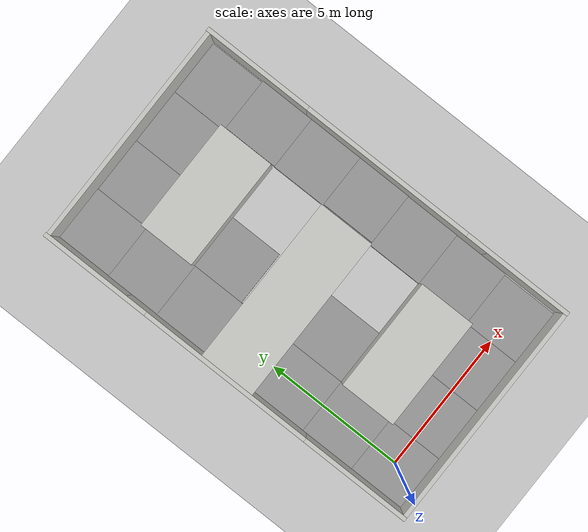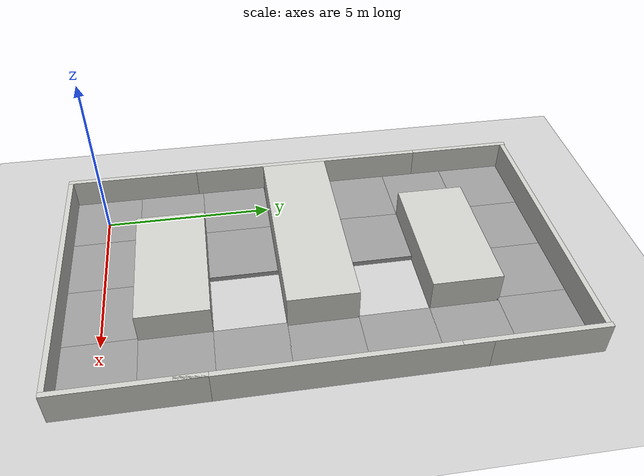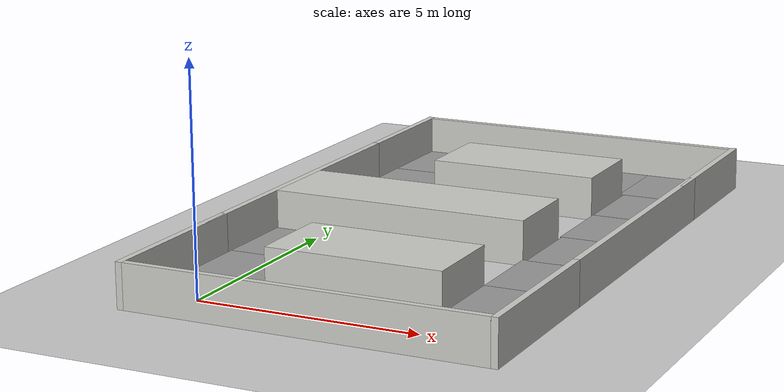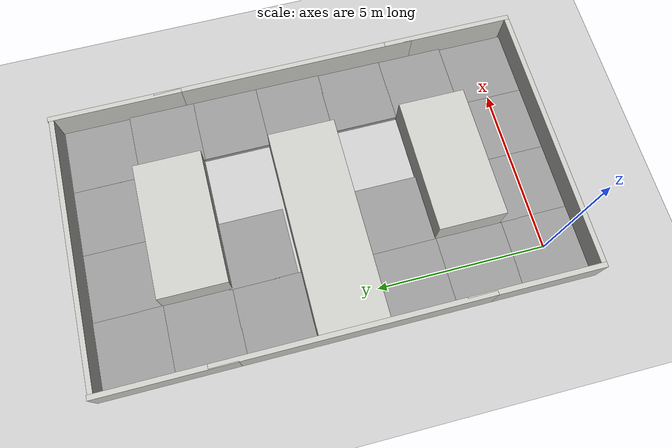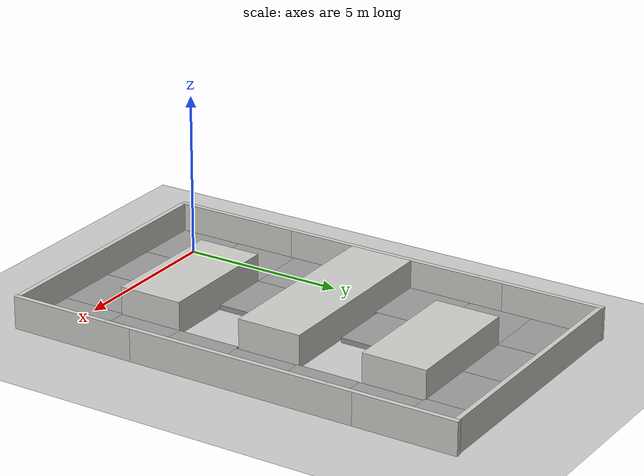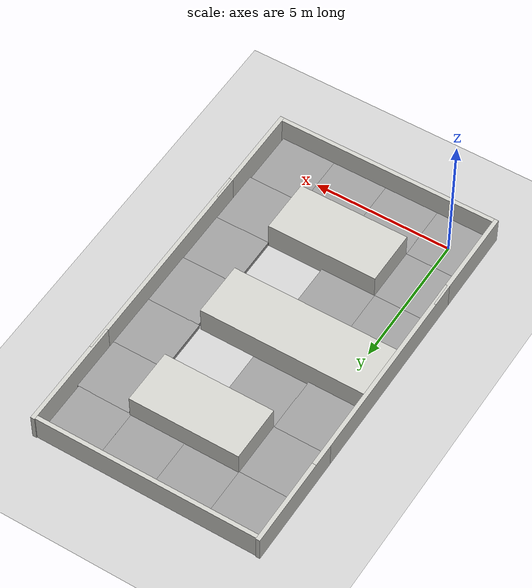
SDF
<sdf version="1.6">
 <world name="default">
  <light name="sun" type="directional">
   <pose>0 0 10 0 -0 0</pose>
   <diffuse>0.8 0.8 0.8 1</diffuse>
   <specular>0.1 0.1 0.1 1</specular>
   <attenuation>
    <range>1000</range>
    <constant>0.9</constant>
    <linear>0.01</linear>
    <quadratic>0.001</quadratic>
   </attenuation>
   <direction>-0.5 0.5 -1</direction>
  </light>
  <model name="ground_plane">
   <static>1</static>
   <link name="link">
    <collision name="collision">
     <geometry><plane><normal>0 0 1</normal><size>100 100</size></plane></geometry>
     <surface><friction><ode><mu>100</mu><mu2>50</mu2></ode></friction></surface>
    </collision>
    <visual name="visual">
     <cast_shadows>0</cast_shadows>
     <geometry><plane><normal>0 0 1</normal><size>100 100</size></plane></geometry>
     <material>
      <script><uri>file://media/materials/scripts/concrete.material</uri><name>Concrete/1</name></script>
     </material>
    </visual>
   </link>
  </model>
  <gravity>0 0 -9.8</gravity>
  <magnetic_field>6e-06 2.3e-05 -4.2e-05</magnetic_field>
  <atmosphere type="adiabatic"/>
  <physics name="default_physics" default="0" type="ode">
   <max_step_size>0.001</max_step_size>
   <real_time_factor>1.5</real_time_factor>
   <real_time_update_rate>1500</real_time_update_rate>
  </physics>
  <scene><ambient>0.4 0.4 0.4 1</ambient><background>0.7 0.7 0.7 1</background><shadows>1</shadows></scene>
  <spherical_coordinates>
   <surface_model>EARTH_WGS84</surface_model>
   <latitude_deg>0</latitude_deg>
   <longitude_deg>0</longitude_deg>
   <elevation>0</elevation>
   <heading_deg>0</heading_deg>
  </spherical_coordinates>
  <model name="wall_8meter">
   <static>1</static>
   <pose>3 -1.075 0 0 -0 0</pose>
   <link name="Wall">
    <collision name="Wall_Collision">
     <geometry><box><size>8 0.15 1</size></box></geometry>
     <pose>0 0 0.5 0 -0 0</pose>
    </collision>
    <visual name="Wall_Visual">
     <pose>0 0 0.5 0 -0 0</pose>
     <geometry><box><size>8 0.15 1</size></box></geometry>
     <material>
      <script><uri>file://media/materials/scripts/gazebo.material</uri><name>Gazebo/CeilingTiled</name></script>
      <ambient>1 0.764706 0.305882 1</ambient>
     </material>
    </visual>
   </link>
  </model>
  <model name="block_2x4m">
   <pose>3 2 0 0 0 -1.5708</pose>
   <link name="Block">
    <collision name="Block_Collision">
     <geometry><box><size>2 4 1</size></box></geometry>
     <pose>0 0 0.5 0 -0 0</pose>
    </collision>
    <visual name="Block_Visual">
     <pose>0 0 0.5 0 -0 0</pose>
     <geometry><box><size>2 4 1</size></box></geometry>
     <material>
      <script><uri>file://media/materials/scripts/gazebo.material</uri><name>Gazebo/CeilingTiled</name></script>
      <ambient>1 0.764706 0.305882 1</ambient>
     </material>
    </visual>
   </link>
   <static>1</static>
  </model>
  <model name="block_2x6m_0">
   <pose>2 6 0 0 0 -1.5708</pose>
   <link name="Block">
    <collision name="Block_Collision">
     <geometry><box><size>2 6 1</size></box></geometry>
     <pose>0 0 0.5 0 -0 0</pose>
    </collision>
    <visual name="Block_Visual">
     <pose>0 0 0.5 0 -0 0</pose>
     <geometry><box><size>2 6 1</size></box></geometry>
     <material>
      <script><uri>file://media/materials/scripts/gazebo.material</uri><name>Gazebo/CeilingTiled</name></script>
      <ambient>1 0.764706 0.305882 1</ambient>
     </material>
    </visual>
   </link>
   <static>1</static>
  </model>
  <model name="block_2x4m_clone_clone_0">
   <pose>3 10 0 0 0 -1.5708</pose>
   <link name="Block">
    <collision name="Block_Collision">
     <geometry><box><size>2 4 1</size></box></geometry>
     <pose>0 0 0.5 0 -0 0</pose>
    </collision>
    <visual name="Block_Visual">
     <pose>0 0 0.5 0 -0 0</pose>
     <geometry><box><size>2 4 1</size></box></geometry>
     <material>
      <script><uri>file://media/materials/scripts/gazebo.material</uri><name>Gazebo/CeilingTiled</name></script>
      <ambient>1 0.764706 0.305882 1</ambient>
     </material>
    </visual>
   </link>
   <static>1</static>
  </model>
  <model name="wall_8meter_clone">
   <static>1</static>
   <pose>3 13.075 0 0 -0 0</pose>
   <link name="Wall">
    <collision name="Wall_Collision">
     <geometry><box><size>8 0.15 1</size></box></geometry>
     <pose>0 0 0.5 0 -0 0</pose>
    </collision>
    <visual name="Wall_Visual">
     <pose>0 0 0.5 0 -0 0</pose>
     <geometry><box><size>8 0.15 1</size></box></geometry>
     <material>
      <script><uri>file://media/materials/scripts/gazebo.material</uri><name>Gazebo/CeilingTiled</name></script>
      <ambient>1 0.764706 0.305882 1</ambient>
     </material>
    </visual>
   </link>
  </model>
  <model name="wall_4meter">
   <static>1</static>
   <pose>7.075 0.850301 0 0 0 -1.5708</pose>
   <link name="Wall">
    <collision name="Wall_Collision">
     <geometry><box><size>4 0.15 1</size></box></geometry>
     <pose>0 0 0.5 0 -0 0</pose>
    </collision>
    <visual name="Wall_Visual">
     <pose>0 0 0.5 0 -0 0</pose>
     <geometry><box><size>4 0.15 1</size></box></geometry>
     <material>
      <script><uri>file://media/materials/scripts/gazebo.material</uri><name>Gazebo/CeilingTiled</name></script>
      <ambient>1 0.764706 0.305882 1</ambient>
     </material>
    </visual>
   </link>
  </model>
  <model name="wall_4meter_clone_clone_1">
   <static>1</static>
   <pose>7.07498 11.1782 0 0 0 -1.5708</pose>
   <link name="Wall">
    <collision name="Wall_Collision">
     <geometry><box><size>4 0.15 1</size></box></geometry>
     <pose>0 0 0.5 0 -0 0</pose>
    </collision>
    <visual name="Wall_Visual">
     <pose>0 0 0.5 0 -0 0</pose>
     <geometry><box><size>4 0.15 1</size></box></geometry>
     <material>
      <script><uri>file://media/materials/scripts/gazebo.material</uri><name>Gazebo/CeilingTiled</name></script>
      <ambient>1 0.764706 0.305882 1</ambient>
     </material>
    </visual>
   </link>
  </model>
  <model name="wall_4meter_clone_0">
   <static>1</static>
   <pose>-1.075 0.850891 0 0 0 -1.5708</pose>
   <link name="Wall">
    <collision name="Wall_Collision">
     <geometry><box><size>4 0.15 1</size></box></geometry>
     <pose>0 0 0.5 0 -0 0</pose>
    </collision>
    <visual name="Wall_Visual">
     <pose>0 0 0.5 0 -0 0</pose>
     <geometry><box><size>4 0.15 1</size></box></geometry>
     <material>
      <script><uri>file://media/materials/scripts/gazebo.material</uri><name>Gazebo/CeilingTiled</name></script>
      <ambient>1 0.764706 0.305882 1</ambient>
     </material>
    </visual>
   </link>
  </model>
  <model name="wall_4meter_clone_0_clone_0">
   <static>1</static>
   <pose>-1.07503 11.1778 0 0 0 -1.5708</pose>
   <link name="Wall">
    <collision name="Wall_Collision">
     <geometry><box><size>4 0.15 1</size></box></geometry>
     <pose>0 0 0.5 0 -0 0</pose>
    </collision>
    <visual name="Wall_Visual">
     <pose>0 0 0.5 0 -0 0</pose>
     <geometry><box><size>4 0.15 1</size></box></geometry>
     <material>
      <script><uri>file://media/materials/scripts/gazebo.material</uri><name>Gazebo/CeilingTiled</name></script>
      <ambient>1 0.764706 0.305882 1</ambient>
     </material>
    </visual>
   </link>
  </model>
  <model name="wall_8meter_0">
   <static>1</static>
   <pose>-1.075 6 0 0 0 -1.5708</pose>
   <link name="Wall">
    <collision name="Wall_Collision">
     <geometry><box><size>8 0.15 1</size></box></geometry>
     <pose>0 0 0.5 0 -0 0</pose>
    </collision>
    <visual name="Wall_Visual">
     <pose>0 0 0.5 0 -0 0</pose>
     <geometry><box><size>8 0.15 1</size></box></geometry>
     <material>
      <script><uri>file://media/materials/scripts/gazebo.material</uri><name>Gazebo/CeilingTiled</name></script>
      <ambient>1 0.764706 0.305882 1</ambient>
     </material>
    </visual>
   </link>
  </model>
  <model name="wall_8meter_0_clone">
   <static>1</static>
   <pose>7.075 6 0 0 0 -1.5708</pose>
   <link name="Wall">
    <collision name="Wall_Collision">
     <geometry><box><size>8 0.15 1</size></box></geometry>
     <pose>0 0 0.5 0 -0 0</pose>
    </collision>
    <visual name="Wall_Visual">
     <pose>0 0 0.5 0 -0 0</pose>
     <geometry><box><size>8 0.15 1</size></box></geometry>
     <material>
      <script><uri>file://media/materials/scripts/gazebo.material</uri><name>Gazebo/CeilingTiled</name></script>
      <ambient>1 0.764706 0.305882 1</ambient>
     </material>
    </visual>
   </link>
  </model>
  <model name="floor_tile">
   <link name="link">
    <inertial>
     <mass>1</mass>
     <inertia>
      <ixx>0.166667</ixx>
      <ixy>0</ixy>
      <ixz>0</ixz>
      <iyy>0.166667</iyy>
      <iyz>0</iyz>
      <izz>0.166667</izz>
     </inertia>
    </inertial>
    <visual name="visual">
     <geometry><box><size>1.98811 2.00352 0.274255</size></box></geometry>
     <material>
      <script><name>Gazebo/Grey</name><uri>file://media/materials/scripts/gazebo.material</uri></script>
      <ambient>0.3 0.3 0.3 1</ambient>
      <diffuse>0.7 0.7 0.7 1</diffuse>
      <specular>0.01 0.01 0.01 1</specular>
      <emissive>0 0 0 1</emissive>
     </material>
    </visual>
    <collision name="collision">
     <geometry><box><size>1.98811 2.00352 0.274255</size></box></geometry>
     <surface>
      <friction>
       <ode><mu>1</mu><mu2>1</mu2><fdir1>0 0 0</fdir1><slip1>0</slip1><slip2>0</slip2></ode>
       <torsional>
        <coefficient>1</coefficient>
        <patch_radius>0</patch_radius>
        <surface_radius>0</surface_radius>
        <use_patch_radius>1</use_patch_radius>
        <ode><slip>0</slip></ode>
       </torsional>
      </friction>
      <bounce><restitution_coefficient>0</restitution_coefficient><threshold>1e+06</threshold></bounce>
      <contact>
       <collide_without_contact>0</collide_without_contact>
       <collide_without_contact_bitmask>1</collide_without_contact_bitmask>
       <collide_bitmask>1</collide_bitmask>
       <ode>
        <soft_cfm>0</soft_cfm>
        <soft_erp>0.2</soft_erp>
        <kp>1e+13</kp>
        <kd>1</kd>
        <max_vel>0.01</max_vel>
        <min_depth>0</min_depth>
       </ode>
       <bullet>
        <split_impulse>1</split_impulse>
        <split_impulse_penetration_threshold>-0.01</split_impulse_penetration_threshold>
        <soft_cfm>0</soft_cfm>
        <soft_erp>0.2</soft_erp>
        <kp>1e+13</kp>
        <kd>1</kd>
       </bullet>
      </contact>
     </surface>
    </collision>
   </link>
   <static>1</static>
  </model>
  <model name="floor_tile_clone">
   <link name="link">
    <inertial>
     <mass>1</mass>
     <inertia>
      <ixx>0.166667</ixx>
      <ixy>0</ixy>
      <ixz>0</ixz>
      <iyy>0.166667</iyy>
      <iyz>0</iyz>
      <izz>0.166667</izz>
     </inertia>
    </inertial>
    <visual name="visual">
     <geometry><box><size>1.98811 2.00352 0.274255</size></box></geometry>
     <material>
      <script><name>Gazebo/Grey</name><uri>file://media/materials/scripts/gazebo.material</uri></script>
      <ambient>0.3 0.3 0.3 1</ambient>
      <diffuse>0.7 0.7 0.7 1</diffuse>
      <specular>0.01 0.01 0.01 1</specular>
      <emissive>0 0 0 1</emissive>
     </material>
    </visual>
    <collision name="collision">
     <geometry><box><size>1.98811 2.00352 0.274255</size></box></geometry>
     <surface>
      <friction>
       <ode><mu>1</mu><mu2>1</mu2><fdir1>0 0 0</fdir1><slip1>0</slip1><slip2>0</slip2></ode>
       <torsional>
        <coefficient>1</coefficient>
        <patch_radius>0</patch_radius>
        <surface_radius>0</surface_radius>
        <use_patch_radius>1</use_patch_radius>
        <ode><slip>0</slip></ode>
       </torsional>
      </friction>
      <bounce><restitution_coefficient>0</restitution_coefficient><threshold>1e+06</threshold></bounce>
      <contact>
       <collide_without_contact>0</collide_without_contact>
       <collide_without_contact_bitmask>1</collide_without_contact_bitmask>
       <collide_bitmask>1</collide_bitmask>
       <ode>
        <soft_cfm>0</soft_cfm>
        <soft_erp>0.2</soft_erp>
        <kp>1e+13</kp>
        <kd>1</kd>
        <max_vel>0.01</max_vel>
        <min_depth>0</min_depth>
       </ode>
       <bullet>
        <split_impulse>1</split_impulse>
        <split_impulse_penetration_threshold>-0.01</split_impulse_penetration_threshold>
        <soft_cfm>0</soft_cfm>
        <soft_erp>0.2</soft_erp>
        <kp>1e+13</kp>
        <kd>1</kd>
       </bullet>
      </contact>
     </surface>
    </collision>
   </link>
   <static>1</static>
   <pose>-0.010789 1.98919 0 0 -0 0</pose>
  </model>
  <model name="floor_tile_clone_0">
   <link name="link">
    <inertial>
     <mass>1</mass>
     <inertia>
      <ixx>0.166667</ixx>
      <ixy>0</ixy>
      <ixz>0</ixz>
      <iyy>0.166667</iyy>
      <iyz>0</iyz>
      <izz>0.166667</izz>
     </inertia>
    </inertial>
    <visual name="visual">
     <geometry><box><size>1.98811 2.00352 0.274255</size></box></geometry>
     <material>
      <script><name>Gazebo/Grey</name><uri>file://media/materials/scripts/gazebo.material</uri></script>
      <ambient>0.3 0.3 0.3 1</ambient>
      <diffuse>0.7 0.7 0.7 1</diffuse>
      <specular>0.01 0.01 0.01 1</specular>
      <emissive>0 0 0 1</emissive>
     </material>
    </visual>
    <collision name="collision">
     <geometry><box><size>1.98811 2.00352 0.274255</size></box></geometry>
     <surface>
      <friction>
       <ode><mu>1</mu><mu2>1</mu2><fdir1>0 0 0</fdir1><slip1>0</slip1><slip2>0</slip2></ode>
       <torsional>
        <coefficient>1</coefficient>
        <patch_radius>0</patch_radius>
        <surface_radius>0</surface_radius>
        <use_patch_radius>1</use_patch_radius>
        <ode><slip>0</slip></ode>
       </torsional>
      </friction>
      <bounce><restitution_coefficient>0</restitution_coefficient><threshold>1e+06</threshold></bounce>
      <contact>
       <collide_without_contact>0</collide_without_contact>
       <collide_without_contact_bitmask>1</collide_without_contact_bitmask>
       <collide_bitmask>1</collide_bitmask>
       <ode>
        <soft_cfm>0</soft_cfm>
        <soft_erp>0.2</soft_erp>
        <kp>1e+13</kp>
        <kd>1</kd>
        <max_vel>0.01</max_vel>
        <min_depth>0</min_depth>
       </ode>
       <bullet>
        <split_impulse>1</split_impulse>
        <split_impulse_penetration_threshold>-0.01</split_impulse_penetration_threshold>
        <soft_cfm>0</soft_cfm>
        <soft_erp>0.2</soft_erp>
        <kp>1e+13</kp>
        <kd>1</kd>
       </bullet>
      </contact>
     </surface>
    </collision>
   </link>
   <static>1</static>
   <pose>-0.010323 3.97747 0 0 -0 0</pose>
  </model>
  <model name="floor_tile_clone_1">
   <link name="link">
    <inertial>
     <mass>1</mass>
     <inertia>
      <ixx>0.166667</ixx>
      <ixy>0</ixy>
      <ixz>0</ixz>
      <iyy>0.166667</iyy>
      <iyz>0</iyz>
      <izz>0.166667</izz>
     </inertia>
    </inertial>
    <visual name="visual">
     <geometry><box><size>1.98811 2.00352 0.274255</size></box></geometry>
     <material>
      <script><name>Gazebo/Grey</name><uri>file://media/materials/scripts/gazebo.material</uri></script>
      <ambient>0.3 0.3 0.3 1</ambient>
      <diffuse>0.7 0.7 0.7 1</diffuse>
      <specular>0.01 0.01 0.01 1</specular>
      <emissive>0 0 0 1</emissive>
     </material>
    </visual>
    <collision name="collision">
     <geometry><box><size>1.98811 2.00352 0.274255</size></box></geometry>
     <surface>
      <friction>
       <ode><mu>1</mu><mu2>1</mu2><fdir1>0 0 0</fdir1><slip1>0</slip1><slip2>0</slip2></ode>
       <torsional>
        <coefficient>1</coefficient>
        <patch_radius>0</patch_radius>
        <surface_radius>0</surface_radius>
        <use_patch_radius>1</use_patch_radius>
        <ode><slip>0</slip></ode>
       </torsional>
      </friction>
      <bounce><restitution_coefficient>0</restitution_coefficient><threshold>1e+06</threshold></bounce>
      <contact>
       <collide_without_contact>0</collide_without_contact>
       <collide_without_contact_bitmask>1</collide_without_contact_bitmask>
       <collide_bitmask>1</collide_bitmask>
       <ode>
        <soft_cfm>0</soft_cfm>
        <soft_erp>0.2</soft_erp>
        <kp>1e+13</kp>
        <kd>1</kd>
        <max_vel>0.01</max_vel>
        <min_depth>0</min_depth>
       </ode>
       <bullet>
        <split_impulse>1</split_impulse>
        <split_impulse_penetration_threshold>-0.01</split_impulse_penetration_threshold>
        <soft_cfm>0</soft_cfm>
        <soft_erp>0.2</soft_erp>
        <kp>1e+13</kp>
        <kd>1</kd>
       </bullet>
      </contact>
     </surface>
    </collision>
   </link>
   <static>1</static>
   <pose>1.97632 0.001969 0 0 -0 0</pose>
  </model>
  <model name="floor_tile_clone_2">
   <link name="link">
    <inertial>
     <mass>1</mass>
     <inertia>
      <ixx>0.166667</ixx>
      <ixy>0</ixy>
      <ixz>0</ixz>
      <iyy>0.166667</iyy>
      <iyz>0</iyz>
      <izz>0.166667</izz>
     </inertia>
    </inertial>
    <visual name="visual">
     <geometry><box><size>1.98811 2.00352 0.274255</size></box></geometry>
     <material>
      <script><name>Gazebo/Grey</name><uri>file://media/materials/scripts/gazebo.material</uri></script>
      <ambient>0.3 0.3 0.3 1</ambient>
      <diffuse>0.7 0.7 0.7 1</diffuse>
      <specular>0.01 0.01 0.01 1</specular>
      <emissive>0 0 0 1</emissive>
     </material>
    </visual>
    <collision name="collision">
     <geometry><box><size>1.98811 2.00352 0.274255</size></box></geometry>
     <surface>
      <friction>
       <ode><mu>1</mu><mu2>1</mu2><fdir1>0 0 0</fdir1><slip1>0</slip1><slip2>0</slip2></ode>
       <torsional>
        <coefficient>1</coefficient>
        <patch_radius>0</patch_radius>
        <surface_radius>0</surface_radius>
        <use_patch_radius>1</use_patch_radius>
        <ode><slip>0</slip></ode>
       </torsional>
      </friction>
      <bounce><restitution_coefficient>0</restitution_coefficient><threshold>1e+06</threshold></bounce>
      <contact>
       <collide_without_contact>0</collide_without_contact>
       <collide_without_contact_bitmask>1</collide_without_contact_bitmask>
       <collide_bitmask>1</collide_bitmask>
       <ode>
        <soft_cfm>0</soft_cfm>
        <soft_erp>0.2</soft_erp>
        <kp>1e+13</kp>
        <kd>1</kd>
        <max_vel>0.01</max_vel>
        <min_depth>0</min_depth>
       </ode>
       <bullet>
        <split_impulse>1</split_impulse>
        <split_impulse_penetration_threshold>-0.01</split_impulse_penetration_threshold>
        <soft_cfm>0</soft_cfm>
        <soft_erp>0.2</soft_erp>
        <kp>1e+13</kp>
        <kd>1</kd>
       </bullet>
      </contact>
     </surface>
    </collision>
   </link>
   <static>1</static>
   <pose>1.97281 3.97948 0 0 -0 0</pose>
  </model>
  <model name="floor_tile_clone_3">
   <link name="link">
    <inertial>
     <mass>1</mass>
     <inertia>
      <ixx>0.166667</ixx>
      <ixy>0</ixy>
      <ixz>0</ixz>
      <iyy>0.166667</iyy>
      <iyz>0</iyz>
      <izz>0.166667</izz>
     </inertia>
    </inertial>
    <visual name="visual">
     <geometry><box><size>1.98811 2.00352 0.274255</size></box></geometry>
     <material>
      <script><name>Gazebo/Grey</name><uri>file://media/materials/scripts/gazebo.material</uri></script>
      <ambient>0.3 0.3 0.3 1</ambient>
      <diffuse>0.7 0.7 0.7 1</diffuse>
      <specular>0.01 0.01 0.01 1</specular>
      <emissive>0 0 0 1</emissive>
     </material>
    </visual>
    <collision name="collision">
     <geometry><box><size>1.98811 2.00352 0.274255</size></box></geometry>
     <surface>
      <friction>
       <ode><mu>1</mu><mu2>1</mu2><fdir1>0 0 0</fdir1><slip1>0</slip1><slip2>0</slip2></ode>
       <torsional>
        <coefficient>1</coefficient>
        <patch_radius>0</patch_radius>
        <surface_radius>0</surface_radius>
        <use_patch_radius>1</use_patch_radius>
        <ode><slip>0</slip></ode>
       </torsional>
      </friction>
      <bounce><restitution_coefficient>0</restitution_coefficient><threshold>1e+06</threshold></bounce>
      <contact>
       <collide_without_contact>0</collide_without_contact>
       <collide_without_contact_bitmask>1</collide_without_contact_bitmask>
       <collide_bitmask>1</collide_bitmask>
       <ode>
        <soft_cfm>0</soft_cfm>
        <soft_erp>0.2</soft_erp>
        <kp>1e+13</kp>
        <kd>1</kd>
        <max_vel>0.01</max_vel>
        <min_depth>0</min_depth>
       </ode>
       <bullet>
        <split_impulse>1</split_impulse>
        <split_impulse_penetration_threshold>-0.01</split_impulse_penetration_threshold>
        <soft_cfm>0</soft_cfm>
        <soft_erp>0.2</soft_erp>
        <kp>1e+13</kp>
        <kd>1</kd>
       </bullet>
      </contact>
     </surface>
    </collision>
   </link>
   <static>1</static>
   <pose>3.95948 -0.007909 0 0 -0 0</pose>
  </model>
  <model name="floor_tile_clone_4">
   <link name="link">
    <inertial>
     <mass>1</mass>
     <inertia>
      <ixx>0.166667</ixx>
      <ixy>0</ixy>
      <ixz>0</ixz>
      <iyy>0.166667</iyy>
      <iyz>0</iyz>
      <izz>0.166667</izz>
     </inertia>
    </inertial>
    <visual name="visual">
     <geometry><box><size>1.98811 2.00352 0.274255</size></box></geometry>
     <material>
      <script><name>Gazebo/Grey</name><uri>file://media/materials/scripts/gazebo.material</uri></script>
      <ambient>0.3 0.3 0.3 1</ambient>
      <diffuse>0.7 0.7 0.7 1</diffuse>
      <specular>0.01 0.01 0.01 1</specular>
      <emissive>0 0 0 1</emissive>
     </material>
    </visual>
    <collision name="collision">
     <geometry><box><size>1.98811 2.00352 0.274255</size></box></geometry>
     <surface>
      <friction>
       <ode><mu>1</mu><mu2>1</mu2><fdir1>0 0 0</fdir1><slip1>0</slip1><slip2>0</slip2></ode>
       <torsional>
        <coefficient>1</coefficient>
        <patch_radius>0</patch_radius>
        <surface_radius>0</surface_radius>
        <use_patch_radius>1</use_patch_radius>
        <ode><slip>0</slip></ode>
       </torsional>
      </friction>
      <bounce><restitution_coefficient>0</restitution_coefficient><threshold>1e+06</threshold></bounce>
      <contact>
       <collide_without_contact>0</collide_without_contact>
       <collide_without_contact_bitmask>1</collide_without_contact_bitmask>
       <collide_bitmask>1</collide_bitmask>
       <ode>
        <soft_cfm>0</soft_cfm>
        <soft_erp>0.2</soft_erp>
        <kp>1e+13</kp>
        <kd>1</kd>
        <max_vel>0.01</max_vel>
        <min_depth>0</min_depth>
       </ode>
       <bullet>
        <split_impulse>1</split_impulse>
        <split_impulse_penetration_threshold>-0.01</split_impulse_penetration_threshold>
        <soft_cfm>0</soft_cfm>
        <soft_erp>0.2</soft_erp>
        <kp>1e+13</kp>
        <kd>1</kd>
       </bullet>
      </contact>
     </surface>
    </collision>
   </link>
   <static>1</static>
   <pose>5.9931 3.99677 0 0 -0 0</pose>
  </model>
  <model name="floor_tile_clone_5">
   <link name="link">
    <inertial>
     <mass>1</mass>
     <inertia>
      <ixx>0.166667</ixx>
      <ixy>0</ixy>
      <ixz>0</ixz>
      <iyy>0.166667</iyy>
      <iyz>0</iyz>
      <izz>0.166667</izz>
     </inertia>
    </inertial>
    <visual name="visual">
     <geometry><box><size>1.98811 2.00352 0.274255</size></box></geometry>
     <material>
      <script><name>Gazebo/Grey</name><uri>file://media/materials/scripts/gazebo.material</uri></script>
      <ambient>0.3 0.3 0.3 1</ambient>
      <diffuse>0.7 0.7 0.7 1</diffuse>
      <specular>0.01 0.01 0.01 1</specular>
      <emissive>0 0 0 1</emissive>
     </material>
    </visual>
    <collision name="collision">
     <geometry><box><size>1.98811 2.00352 0.274255</size></box></geometry>
     <surface>
      <friction>
       <ode><mu>1</mu><mu2>1</mu2><fdir1>0 0 0</fdir1><slip1>0</slip1><slip2>0</slip2></ode>
       <torsional>
        <coefficient>1</coefficient>
        <patch_radius>0</patch_radius>
        <surface_radius>0</surface_radius>
        <use_patch_radius>1</use_patch_radius>
        <ode><slip>0</slip></ode>
       </torsional>
      </friction>
      <bounce><restitution_coefficient>0</restitution_coefficient><threshold>1e+06</threshold></bounce>
      <contact>
       <collide_without_contact>0</collide_without_contact>
       <collide_without_contact_bitmask>1</collide_without_contact_bitmask>
       <collide_bitmask>1</collide_bitmask>
       <ode>
        <soft_cfm>0</soft_cfm>
        <soft_erp>0.2</soft_erp>
        <kp>1e+13</kp>
        <kd>1</kd>
        <max_vel>0.01</max_vel>
        <min_depth>0</min_depth>
       </ode>
       <bullet>
        <split_impulse>1</split_impulse>
        <split_impulse_penetration_threshold>-0.01</split_impulse_penetration_threshold>
        <soft_cfm>0</soft_cfm>
        <soft_erp>0.2</soft_erp>
        <kp>1e+13</kp>
        <kd>1</kd>
       </bullet>
      </contact>
     </surface>
    </collision>
   </link>
   <static>1</static>
   <pose>5.98511 2.00285 0 0 -0 0</pose>
  </model>
  <model name="floor_tile_clone_6">
   <link name="link">
    <inertial>
     <mass>1</mass>
     <inertia>
      <ixx>0.166667</ixx>
      <ixy>0</ixy>
      <ixz>0</ixz>
      <iyy>0.166667</iyy>
      <iyz>0</iyz>
      <izz>0.166667</izz>
     </inertia>
    </inertial>
    <visual name="visual">
     <geometry><box><size>1.98811 2.00352 0.274255</size></box></geometry>
     <material>
      <script><name>Gazebo/Grey</name><uri>file://media/materials/scripts/gazebo.material</uri></script>
      <ambient>0.3 0.3 0.3 1</ambient>
      <diffuse>0.7 0.7 0.7 1</diffuse>
      <specular>0.01 0.01 0.01 1</specular>
      <emissive>0 0 0 1</emissive>
     </material>
    </visual>
    <collision name="collision">
     <geometry><box><size>1.98811 2.00352 0.274255</size></box></geometry>
     <surface>
      <friction>
       <ode><mu>1</mu><mu2>1</mu2><fdir1>0 0 0</fdir1><slip1>0</slip1><slip2>0</slip2></ode>
       <torsional>
        <coefficient>1</coefficient>
        <patch_radius>0</patch_radius>
        <surface_radius>0</surface_radius>
        <use_patch_radius>1</use_patch_radius>
        <ode><slip>0</slip></ode>
       </torsional>
      </friction>
      <bounce><restitution_coefficient>0</restitution_coefficient><threshold>1e+06</threshold></bounce>
      <contact>
       <collide_without_contact>0</collide_without_contact>
       <collide_without_contact_bitmask>1</collide_without_contact_bitmask>
       <collide_bitmask>1</collide_bitmask>
       <ode>
        <soft_cfm>0</soft_cfm>
        <soft_erp>0.2</soft_erp>
        <kp>1e+13</kp>
        <kd>1</kd>
        <max_vel>0.01</max_vel>
        <min_depth>0</min_depth>
       </ode>
       <bullet>
        <split_impulse>1</split_impulse>
        <split_impulse_penetration_threshold>-0.01</split_impulse_penetration_threshold>
        <soft_cfm>0</soft_cfm>
        <soft_erp>0.2</soft_erp>
        <kp>1e+13</kp>
        <kd>1</kd>
       </bullet>
      </contact>
     </surface>
    </collision>
   </link>
   <static>1</static>
   <pose>5.94204 0.00119 0 0 -0 0</pose>
  </model>
  <model name="floor_tile_clone_7">
   <link name="link">
    <inertial>
     <mass>1</mass>
     <inertia>
      <ixx>0.166667</ixx>
      <ixy>0</ixy>
      <ixz>0</ixz>
      <iyy>0.166667</iyy>
      <iyz>0</iyz>
      <izz>0.166667</izz>
     </inertia>
    </inertial>
    <visual name="visual">
     <geometry><box><size>1.98811 2.00352 0.274255</size></box></geometry>
     <material>
      <script><name>Gazebo/Grey</name><uri>file://media/materials/scripts/gazebo.material</uri></script>
      <ambient>0.3 0.3 0.3 1</ambient>
      <diffuse>0.7 0.7 0.7 1</diffuse>
      <specular>0.01 0.01 0.01 1</specular>
      <emissive>0 0 0 1</emissive>
     </material>
    </visual>
    <collision name="collision">
     <geometry><box><size>1.98811 2.00352 0.274255</size></box></geometry>
     <surface>
      <friction>
       <ode><mu>1</mu><mu2>1</mu2><fdir1>0 0 0</fdir1><slip1>0</slip1><slip2>0</slip2></ode>
       <torsional>
        <coefficient>1</coefficient>
        <patch_radius>0</patch_radius>
        <surface_radius>0</surface_radius>
        <use_patch_radius>1</use_patch_radius>
        <ode><slip>0</slip></ode>
       </torsional>
      </friction>
      <bounce><restitution_coefficient>0</restitution_coefficient><threshold>1e+06</threshold></bounce>
      <contact>
       <collide_without_contact>0</collide_without_contact>
       <collide_without_contact_bitmask>1</collide_without_contact_bitmask>
       <collide_bitmask>1</collide_bitmask>
       <ode>
        <soft_cfm>0</soft_cfm>
        <soft_erp>0.2</soft_erp>
        <kp>1e+13</kp>
        <kd>1</kd>
        <max_vel>0.01</max_vel>
        <min_depth>0</min_depth>
       </ode>
       <bullet>
        <split_impulse>1</split_impulse>
        <split_impulse_penetration_threshold>-0.01</split_impulse_penetration_threshold>
        <soft_cfm>0</soft_cfm>
        <soft_erp>0.2</soft_erp>
        <kp>1e+13</kp>
        <kd>1</kd>
       </bullet>
      </contact>
     </surface>
    </collision>
   </link>
   <static>1</static>
   <pose>6.09438 5.97733 0 0 -0 0</pose>
  </model>
  <model name="floor_tile_clone_8">
   <link name="link">
    <inertial>
     <mass>1</mass>
     <inertia>
      <ixx>0.166667</ixx>
      <ixy>0</ixy>
      <ixz>0</ixz>
      <iyy>0.166667</iyy>
      <iyz>0</iyz>
      <izz>0.166667</izz>
     </inertia>
    </inertial>
    <visual name="visual">
     <geometry><box><size>1.98811 2.00352 0.274255</size></box></geometry>
     <material>
      <script><name>Gazebo/Grey</name><uri>file://media/materials/scripts/gazebo.material</uri></script>
      <ambient>0.3 0.3 0.3 1</ambient>
      <diffuse>0.7 0.7 0.7 1</diffuse>
      <specular>0.01 0.01 0.01 1</specular>
      <emissive>0 0 0 1</emissive>
     </material>
    </visual>
    <collision name="collision">
     <geometry><box><size>1.98811 2.00352 0.274255</size></box></geometry>
     <surface>
      <friction>
       <ode><mu>1</mu><mu2>1</mu2><fdir1>0 0 0</fdir1><slip1>0</slip1><slip2>0</slip2></ode>
       <torsional>
        <coefficient>1</coefficient>
        <patch_radius>0</patch_radius>
        <surface_radius>0</surface_radius>
        <use_patch_radius>1</use_patch_radius>
        <ode><slip>0</slip></ode>
       </torsional>
      </friction>
      <bounce><restitution_coefficient>0</restitution_coefficient><threshold>1e+06</threshold></bounce>
      <contact>
       <collide_without_contact>0</collide_without_contact>
       <collide_without_contact_bitmask>1</collide_without_contact_bitmask>
       <collide_bitmask>1</collide_bitmask>
       <ode>
        <soft_cfm>0</soft_cfm>
        <soft_erp>0.2</soft_erp>
        <kp>1e+13</kp>
        <kd>1</kd>
        <max_vel>0.01</max_vel>
        <min_depth>0</min_depth>
       </ode>
       <bullet>
        <split_impulse>1</split_impulse>
        <split_impulse_penetration_threshold>-0.01</split_impulse_penetration_threshold>
        <soft_cfm>0</soft_cfm>
        <soft_erp>0.2</soft_erp>
        <kp>1e+13</kp>
        <kd>1</kd>
       </bullet>
      </contact>
     </surface>
    </collision>
   </link>
   <static>1</static>
   <pose>6.05456 7.969 0 0 -0 0</pose>
  </model>
  <model name="floor_tile_clone_9">
   <link name="link">
    <inertial>
     <mass>1</mass>
     <inertia>
      <ixx>0.166667</ixx>
      <ixy>0</ixy>
      <ixz>0</ixz>
      <iyy>0.166667</iyy>
      <iyz>0</iyz>
      <izz>0.166667</izz>
     </inertia>
    </inertial>
    <visual name="visual">
     <geometry><box><size>1.98811 2.00352 0.274255</size></box></geometry>
     <material>
      <script><name>Gazebo/Grey</name><uri>file://media/materials/scripts/gazebo.material</uri></script>
      <ambient>0.3 0.3 0.3 1</ambient>
      <diffuse>0.7 0.7 0.7 1</diffuse>
      <specular>0.01 0.01 0.01 1</specular>
      <emissive>0 0 0 1</emissive>
     </material>
    </visual>
    <collision name="collision">
     <geometry><box><size>1.98811 2.00352 0.274255</size></box></geometry>
     <surface>
      <friction>
       <ode><mu>1</mu><mu2>1</mu2><fdir1>0 0 0</fdir1><slip1>0</slip1><slip2>0</slip2></ode>
       <torsional>
        <coefficient>1</coefficient>
        <patch_radius>0</patch_radius>
        <surface_radius>0</surface_radius>
        <use_patch_radius>1</use_patch_radius>
        <ode><slip>0</slip></ode>
       </torsional>
      </friction>
      <bounce><restitution_coefficient>0</restitution_coefficient><threshold>1e+06</threshold></bounce>
      <contact>
       <collide_without_contact>0</collide_without_contact>
       <collide_without_contact_bitmask>1</collide_without_contact_bitmask>
       <collide_bitmask>1</collide_bitmask>
       <ode>
        <soft_cfm>0</soft_cfm>
        <soft_erp>0.2</soft_erp>
        <kp>1e+13</kp>
        <kd>1</kd>
        <max_vel>0.01</max_vel>
        <min_depth>0</min_depth>
       </ode>
       <bullet>
        <split_impulse>1</split_impulse>
        <split_impulse_penetration_threshold>-0.01</split_impulse_penetration_threshold>
        <soft_cfm>0</soft_cfm>
        <soft_erp>0.2</soft_erp>
        <kp>1e+13</kp>
        <kd>1</kd>
       </bullet>
      </contact>
     </surface>
    </collision>
   </link>
   <static>1</static>
   <pose>6.06559 9.96265 0 0 -0 0</pose>
  </model>
  <model name="floor_tile_clone_10">
   <link name="link">
    <inertial>
     <mass>1</mass>
     <inertia>
      <ixx>0.166667</ixx>
      <ixy>0</ixy>
      <ixz>0</ixz>
      <iyy>0.166667</iyy>
      <iyz>0</iyz>
      <izz>0.166667</izz>
     </inertia>
    </inertial>
    <visual name="visual">
     <geometry><box><size>1.98811 2.00352 0.274255</size></box></geometry>
     <material>
      <script><name>Gazebo/Grey</name><uri>file://media/materials/scripts/gazebo.material</uri></script>
      <ambient>0.3 0.3 0.3 1</ambient>
      <diffuse>0.7 0.7 0.7 1</diffuse>
      <specular>0.01 0.01 0.01 1</specular>
      <emissive>0 0 0 1</emissive>
     </material>
    </visual>
    <collision name="collision">
     <geometry><box><size>1.98811 2.00352 0.274255</size></box></geometry>
     <surface>
      <friction>
       <ode><mu>1</mu><mu2>1</mu2><fdir1>0 0 0</fdir1><slip1>0</slip1><slip2>0</slip2></ode>
       <torsional>
        <coefficient>1</coefficient>
        <patch_radius>0</patch_radius>
        <surface_radius>0</surface_radius>
        <use_patch_radius>1</use_patch_radius>
        <ode><slip>0</slip></ode>
       </torsional>
      </friction>
      <bounce><restitution_coefficient>0</restitution_coefficient><threshold>1e+06</threshold></bounce>
      <contact>
       <collide_without_contact>0</collide_without_contact>
       <collide_without_contact_bitmask>1</collide_without_contact_bitmask>
       <collide_bitmask>1</collide_bitmask>
       <ode>
        <soft_cfm>0</soft_cfm>
        <soft_erp>0.2</soft_erp>
        <kp>1e+13</kp>
        <kd>1</kd>
        <max_vel>0.01</max_vel>
        <min_depth>0</min_depth>
       </ode>
       <bullet>
        <split_impulse>1</split_impulse>
        <split_impulse_penetration_threshold>-0.01</split_impulse_penetration_threshold>
        <soft_cfm>0</soft_cfm>
        <soft_erp>0.2</soft_erp>
        <kp>1e+13</kp>
        <kd>1</kd>
       </bullet>
      </contact>
     </surface>
    </collision>
   </link>
   <static>1</static>
   <pose>5.95756 11.9557 0 0 -0 0</pose>
  </model>
  <model name="floor_tile_clone_11">
   <link name="link">
    <inertial>
     <mass>1</mass>
     <inertia>
      <ixx>0.166667</ixx>
      <ixy>0</ixy>
      <ixz>0</ixz>
      <iyy>0.166667</iyy>
      <iyz>0</iyz>
      <izz>0.166667</izz>
     </inertia>
    </inertial>
    <visual name="visual">
     <geometry><box><size>1.98811 2.00352 0.274255</size></box></geometry>
     <material>
      <script><name>Gazebo/Grey</name><uri>file://media/materials/scripts/gazebo.material</uri></script>
      <ambient>0.3 0.3 0.3 1</ambient>
      <diffuse>0.7 0.7 0.7 1</diffuse>
      <specular>0.01 0.01 0.01 1</specular>
      <emissive>0 0 0 1</emissive>
     </material>
    </visual>
    <collision name="collision">
     <geometry><box><size>1.98811 2.00352 0.274255</size></box></geometry>
     <surface>
      <friction>
       <ode><mu>1</mu><mu2>1</mu2><fdir1>0 0 0</fdir1><slip1>0</slip1><slip2>0</slip2></ode>
       <torsional>
        <coefficient>1</coefficient>
        <patch_radius>0</patch_radius>
        <surface_radius>0</surface_radius>
        <use_patch_radius>1</use_patch_radius>
        <ode><slip>0</slip></ode>
       </torsional>
      </friction>
      <bounce><restitution_coefficient>0</restitution_coefficient><threshold>1e+06</threshold></bounce>
      <contact>
       <collide_without_contact>0</collide_without_contact>
       <collide_without_contact_bitmask>1</collide_without_contact_bitmask>
       <collide_bitmask>1</collide_bitmask>
       <ode>
        <soft_cfm>0</soft_cfm>
        <soft_erp>0.2</soft_erp>
        <kp>1e+13</kp>
        <kd>1</kd>
        <max_vel>0.01</max_vel>
        <min_depth>0</min_depth>
       </ode>
       <bullet>
        <split_impulse>1</split_impulse>
        <split_impulse_penetration_threshold>-0.01</split_impulse_penetration_threshold>
        <soft_cfm>0</soft_cfm>
        <soft_erp>0.2</soft_erp>
        <kp>1e+13</kp>
        <kd>1</kd>
       </bullet>
      </contact>
     </surface>
    </collision>
   </link>
   <static>1</static>
   <pose>3.96929 11.9571 0 0 -0 0</pose>
  </model>
  <model name="floor_tile_clone_12">
   <link name="link">
    <inertial>
     <mass>1</mass>
     <inertia>
      <ixx>0.166667</ixx>
      <ixy>0</ixy>
      <ixz>0</ixz>
      <iyy>0.166667</iyy>
      <iyz>0</iyz>
      <izz>0.166667</izz>
     </inertia>
    </inertial>
    <visual name="visual">
     <geometry><box><size>1.98811 2.00352 0.274255</size></box></geometry>
     <material>
      <script><name>Gazebo/Grey</name><uri>file://media/materials/scripts/gazebo.material</uri></script>
      <ambient>0.3 0.3 0.3 1</ambient>
      <diffuse>0.7 0.7 0.7 1</diffuse>
      <specular>0.01 0.01 0.01 1</specular>
      <emissive>0 0 0 1</emissive>
     </material>
    </visual>
    <collision name="collision">
     <geometry><box><size>1.98811 2.00352 0.274255</size></box></geometry>
     <surface>
      <friction>
       <ode><mu>1</mu><mu2>1</mu2><fdir1>0 0 0</fdir1><slip1>0</slip1><slip2>0</slip2></ode>
       <torsional>
        <coefficient>1</coefficient>
        <patch_radius>0</patch_radius>
        <surface_radius>0</surface_radius>
        <use_patch_radius>1</use_patch_radius>
        <ode><slip>0</slip></ode>
       </torsional>
      </friction>
      <bounce><restitution_coefficient>0</restitution_coefficient><threshold>1e+06</threshold></bounce>
      <contact>
       <collide_without_contact>0</collide_without_contact>
       <collide_without_contact_bitmask>1</collide_without_contact_bitmask>
       <collide_bitmask>1</collide_bitmask>
       <ode>
        <soft_cfm>0</soft_cfm>
        <soft_erp>0.2</soft_erp>
        <kp>1e+13</kp>
        <kd>1</kd>
        <max_vel>0.01</max_vel>
        <min_depth>0</min_depth>
       </ode>
       <bullet>
        <split_impulse>1</split_impulse>
        <split_impulse_penetration_threshold>-0.01</split_impulse_penetration_threshold>
        <soft_cfm>0</soft_cfm>
        <soft_erp>0.2</soft_erp>
        <kp>1e+13</kp>
        <kd>1</kd>
       </bullet>
      </contact>
     </surface>
    </collision>
   </link>
   <static>1</static>
   <pose>1.98779 11.9583 0 0 -0 0</pose>
  </model>
  <model name="floor_tile_clone_13">
   <link name="link">
    <inertial>
     <mass>1</mass>
     <inertia>
      <ixx>0.166667</ixx>
      <ixy>0</ixy>
      <ixz>0</ixz>
      <iyy>0.166667</iyy>
      <iyz>0</iyz>
      <izz>0.166667</izz>
     </inertia>
    </inertial>
    <visual name="visual">
     <geometry><box><size>1.98811 2.00352 0.274255</size></box></geometry>
     <material>
      <script><name>Gazebo/Grey</name><uri>file://media/materials/scripts/gazebo.material</uri></script>
      <ambient>0.3 0.3 0.3 1</ambient>
      <diffuse>0.7 0.7 0.7 1</diffuse>
      <specular>0.01 0.01 0.01 1</specular>
      <emissive>0 0 0 1</emissive>
     </material>
    </visual>
    <collision name="collision">
     <geometry><box><size>1.98811 2.00352 0.274255</size></box></geometry>
     <surface>
      <friction>
       <ode><mu>1</mu><mu2>1</mu2><fdir1>0 0 0</fdir1><slip1>0</slip1><slip2>0</slip2></ode>
       <torsional>
        <coefficient>1</coefficient>
        <patch_radius>0</patch_radius>
        <surface_radius>0</surface_radius>
        <use_patch_radius>1</use_patch_radius>
        <ode><slip>0</slip></ode>
       </torsional>
      </friction>
      <bounce><restitution_coefficient>0</restitution_coefficient><threshold>1e+06</threshold></bounce>
      <contact>
       <collide_without_contact>0</collide_without_contact>
       <collide_without_contact_bitmask>1</collide_without_contact_bitmask>
       <collide_bitmask>1</collide_bitmask>
       <ode>
        <soft_cfm>0</soft_cfm>
        <soft_erp>0.2</soft_erp>
        <kp>1e+13</kp>
        <kd>1</kd>
        <max_vel>0.01</max_vel>
        <min_depth>0</min_depth>
       </ode>
       <bullet>
        <split_impulse>1</split_impulse>
        <split_impulse_penetration_threshold>-0.01</split_impulse_penetration_threshold>
        <soft_cfm>0</soft_cfm>
        <soft_erp>0.2</soft_erp>
        <kp>1e+13</kp>
        <kd>1</kd>
       </bullet>
      </contact>
     </surface>
    </collision>
   </link>
   <static>1</static>
   <pose>0.010671 11.9672 0 0 -0 0</pose>
  </model>
  <model name="floor_tile_clone_14">
   <link name="link">
    <inertial>
     <mass>1</mass>
     <inertia>
      <ixx>0.166667</ixx>
      <ixy>0</ixy>
      <ixz>0</ixz>
      <iyy>0.166667</iyy>
      <iyz>0</iyz>
      <izz>0.166667</izz>
     </inertia>
    </inertial>
    <visual name="visual">
     <geometry><box><size>1.98811 2.00352 0.274255</size></box></geometry>
     <material>
      <script><name>Gazebo/Grey</name><uri>file://media/materials/scripts/gazebo.material</uri></script>
      <ambient>0.3 0.3 0.3 1</ambient>
      <diffuse>0.7 0.7 0.7 1</diffuse>
      <specular>0.01 0.01 0.01 1</specular>
      <emissive>0 0 0 1</emissive>
     </material>
    </visual>
    <collision name="collision">
     <geometry><box><size>1.98811 2.00352 0.274255</size></box></geometry>
     <surface>
      <friction>
       <ode><mu>1</mu><mu2>1</mu2><fdir1>0 0 0</fdir1><slip1>0</slip1><slip2>0</slip2></ode>
       <torsional>
        <coefficient>1</coefficient>
        <patch_radius>0</patch_radius>
        <surface_radius>0</surface_radius>
        <use_patch_radius>1</use_patch_radius>
        <ode><slip>0</slip></ode>
       </torsional>
      </friction>
      <bounce><restitution_coefficient>0</restitution_coefficient><threshold>1e+06</threshold></bounce>
      <contact>
       <collide_without_contact>0</collide_without_contact>
       <collide_without_contact_bitmask>1</collide_without_contact_bitmask>
       <collide_bitmask>1</collide_bitmask>
       <ode>
        <soft_cfm>0</soft_cfm>
        <soft_erp>0.2</soft_erp>
        <kp>1e+13</kp>
        <kd>1</kd>
        <max_vel>0.01</max_vel>
        <min_depth>0</min_depth>
       </ode>
       <bullet>
        <split_impulse>1</split_impulse>
        <split_impulse_penetration_threshold>-0.01</split_impulse_penetration_threshold>
        <soft_cfm>0</soft_cfm>
        <soft_erp>0.2</soft_erp>
        <kp>1e+13</kp>
        <kd>1</kd>
       </bullet>
      </contact>
     </surface>
    </collision>
   </link>
   <static>1</static>
   <pose>0.0023 9.98039 0 0 -0 0</pose>
  </model>
  <model name="floor_tile_clone_15">
   <link name="link">
    <inertial>
     <mass>1</mass>
     <inertia>
      <ixx>0.166667</ixx>
      <ixy>0</ixy>
      <ixz>0</ixz>
      <iyy>0.166667</iyy>
      <iyz>0</iyz>
      <izz>0.166667</izz>
     </inertia>
    </inertial>
    <visual name="visual">
     <geometry><box><size>1.98811 2.00352 0.274255</size></box></geometry>
     <material>
      <script><name>Gazebo/Grey</name><uri>file://media/materials/scripts/gazebo.material</uri></script>
      <ambient>0.3 0.3 0.3 1</ambient>
      <diffuse>0.7 0.7 0.7 1</diffuse>
      <specular>0.01 0.01 0.01 1</specular>
      <emissive>0 0 0 1</emissive>
     </material>
    </visual>
    <collision name="collision">
     <geometry><box><size>1.98811 2.00352 0.274255</size></box></geometry>
     <surface>
      <friction>
       <ode><mu>1</mu><mu2>1</mu2><fdir1>0 0 0</fdir1><slip1>0</slip1><slip2>0</slip2></ode>
       <torsional>
        <coefficient>1</coefficient>
        <patch_radius>0</patch_radius>
        <surface_radius>0</surface_radius>
        <use_patch_radius>1</use_patch_radius>
        <ode><slip>0</slip></ode>
       </torsional>
      </friction>
      <bounce><restitution_coefficient>0</restitution_coefficient><threshold>1e+06</threshold></bounce>
      <contact>
       <collide_without_contact>0</collide_without_contact>
       <collide_without_contact_bitmask>1</collide_without_contact_bitmask>
       <collide_bitmask>1</collide_bitmask>
       <ode>
        <soft_cfm>0</soft_cfm>
        <soft_erp>0.2</soft_erp>
        <kp>1e+13</kp>
        <kd>1</kd>
        <max_vel>0.01</max_vel>
        <min_depth>0</min_depth>
       </ode>
       <bullet>
        <split_impulse>1</split_impulse>
        <split_impulse_penetration_threshold>-0.01</split_impulse_penetration_threshold>
        <soft_cfm>0</soft_cfm>
        <soft_erp>0.2</soft_erp>
        <kp>1e+13</kp>
        <kd>1</kd>
       </bullet>
      </contact>
     </surface>
    </collision>
   </link>
   <static>1</static>
   <pose>-0.006077 7.99484 0 0 -0 0</pose>
  </model>
  <model name="floor_tile_clone_16">
   <link name="link">
    <inertial>
     <mass>1</mass>
     <inertia>
      <ixx>0.166667</ixx>
      <ixy>0</ixy>
      <ixz>0</ixz>
      <iyy>0.166667</iyy>
      <iyz>0</iyz>
      <izz>0.166667</izz>
     </inertia>
    </inertial>
    <visual name="visual">
     <geometry><box><size>1.98811 2.00352 0.274255</size></box></geometry>
     <material>
      <script><name>Gazebo/Grey</name><uri>file://media/materials/scripts/gazebo.material</uri></script>
      <ambient>0.3 0.3 0.3 1</ambient>
      <diffuse>0.7 0.7 0.7 1</diffuse>
      <specular>0.01 0.01 0.01 1</specular>
      <emissive>0 0 0 1</emissive>
     </material>
    </visual>
    <collision name="collision">
     <geometry><box><size>1.98811 2.00352 0.274255</size></box></geometry>
     <surface>
      <friction>
       <ode><mu>1</mu><mu2>1</mu2><fdir1>0 0 0</fdir1><slip1>0</slip1><slip2>0</slip2></ode>
       <torsional>
        <coefficient>1</coefficient>
        <patch_radius>0</patch_radius>
        <surface_radius>0</surface_radius>
        <use_patch_radius>1</use_patch_radius>
        <ode><slip>0</slip></ode>
       </torsional>
      </friction>
      <bounce><restitution_coefficient>0</restitution_coefficient><threshold>1e+06</threshold></bounce>
      <contact>
       <collide_without_contact>0</collide_without_contact>
       <collide_without_contact_bitmask>1</collide_without_contact_bitmask>
       <collide_bitmask>1</collide_bitmask>
       <ode>
        <soft_cfm>0</soft_cfm>
        <soft_erp>0.2</soft_erp>
        <kp>1e+13</kp>
        <kd>1</kd>
        <max_vel>0.01</max_vel>
        <min_depth>0</min_depth>
       </ode>
       <bullet>
        <split_impulse>1</split_impulse>
        <split_impulse_penetration_threshold>-0.01</split_impulse_penetration_threshold>
        <soft_cfm>0</soft_cfm>
        <soft_erp>0.2</soft_erp>
        <kp>1e+13</kp>
        <kd>1</kd>
       </bullet>
      </contact>
     </surface>
    </collision>
   </link>
   <static>1</static>
   <pose>1.96645 8.08609 0 0 -0 0</pose>
  </model>
 </world>
</sdf>
